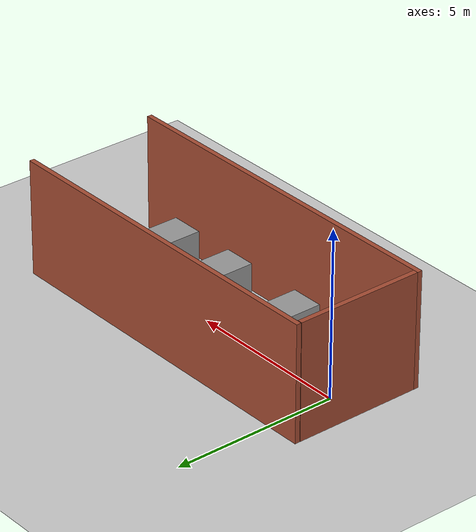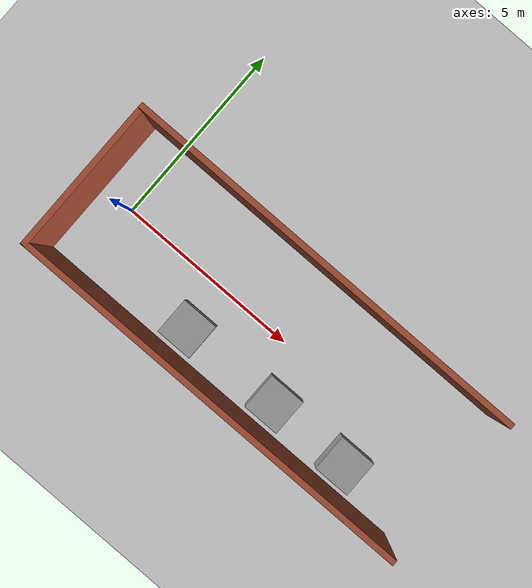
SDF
<sdf version="1.6">
 <world name="default">
  <light name="sun" type="directional">
   <pose>0 0 10 0 -0 0</pose>
   <diffuse>0.8 0.8 0.8 1</diffuse>
   <specular>0.2 0.2 0.2 1</specular>
   <attenuation>
    <range>1000</range>
    <constant>0.9</constant>
    <linear>0.01</linear>
    <quadratic>0.001</quadratic>
   </attenuation>
   <direction>-0.5 0.1 -0.9</direction>
  </light>
  <model name="ground_plane">
   <static>1</static>
   <link name="link">
    <collision name="collision">
     <geometry><plane><normal>0 0 1</normal><size>100 100</size></plane></geometry>
     <surface>
      <contact><collide_bitmask>65535</collide_bitmask></contact>
      <friction><ode><mu>100</mu><mu2>50</mu2></ode></friction>
     </surface>
    </collision>
    <visual name="visual">
     <cast_shadows>0</cast_shadows>
     <geometry><plane><normal>0 0 1</normal><size>100 100</size></plane></geometry>
     <material>
      <script><uri>file://media/materials/scripts/gazebo.material</uri><name>Gazebo/Grey</name></script>
     </material>
    </visual>
   </link>
  </model>
  <gravity>0 0 -9.8</gravity>
  <magnetic_field>6e-06 2.3e-05 -4.2e-05</magnetic_field>
  <atmosphere type="adiabatic"/>
  <physics name="default_physics" default="0" type="ode">
   <max_step_size>0.001</max_step_size>
   <real_time_factor>1</real_time_factor>
   <real_time_update_rate>1000</real_time_update_rate>
  </physics>
  <scene><ambient>0.4 0.4 0.4 1</ambient><background>0.7 0.7 0.7 1</background><shadows>1</shadows></scene>
  <spherical_coordinates>
   <surface_model>EARTH_WGS84</surface_model>
   <latitude_deg>0</latitude_deg>
   <longitude_deg>0</longitude_deg>
   <elevation>0</elevation>
   <heading_deg>0</heading_deg>
  </spherical_coordinates>
  <model name="lobbyFloor">
   <pose>4.463 -0.015365 0 0 -0 0</pose>
   <link name="Wall_20">
    <collision name="Wall_20_Collision">
     <geometry><box><size>4 0.15 3.5</size></box></geometry>
     <pose>0 0 1.75 0 -0 0</pose>
    </collision>
    <visual name="Wall_20_Visual">
     <pose>0 0 1.75 0 -0 0</pose>
     <geometry><box><size>4 0.15 3.5</size></box></geometry>
     <material>
      <script><uri>file://media/materials/scripts/gazebo.material</uri><name>Gazebo/Bricks</name></script>
      <ambient>1 1 1 1</ambient>
     </material>
     <meta><layer>0</layer></meta>
    </visual>
    <pose>-5.426 -0.075 0 0 -0 1.5708</pose>
   </link>
   <link name="Wall_3">
    <collision name="Wall_3_Collision">
     <geometry><box><size>11 0.15 3.5</size></box></geometry>
     <pose>0 0 1.75 0 -0 0</pose>
    </collision>
    <visual name="Wall_3_Visual">
     <pose>0 0 1.75 0 -0 0</pose>
     <geometry><box><size>11 0.15 3.5</size></box></geometry>
     <material>
      <script><uri>file://media/materials/scripts/gazebo.material</uri><name>Gazebo/Bricks</name></script>
      <ambient>1 1 1 1</ambient>
     </material>
     <meta><layer>0</layer></meta>
    </visual>
    <pose>-0.001 -2.01236 0 0 -0 0</pose>
   </link>
   <link name="Wall_8">
    <collision name="Wall_8_Collision">
     <geometry><box><size>11 0.15 3.5</size></box></geometry>
     <pose>0 0 1.75 0 -0 0</pose>
    </collision>
    <visual name="Wall_8_Visual">
     <pose>0 0 1.75 0 -0 0</pose>
     <geometry><box><size>11 0.15 3.5</size></box></geometry>
     <material>
      <script><uri>file://media/materials/scripts/gazebo.material</uri><name>Gazebo/Bricks</name></script>
      <ambient>1 1 1 1</ambient>
     </material>
     <meta><layer>0</layer></meta>
    </visual>
    <pose>0.001 2.01236 0 0 -0 0</pose>
   </link>
   <static>1</static>
  </model>
  <model name="unit_box">
   <pose>2.97411 -1.26843 0.499995 1e-05 -0 0</pose>
   <link name="link">
    <inertial>
     <mass>1</mass>
     <inertia>
      <ixx>0.166667</ixx>
      <ixy>0</ixy>
      <ixz>0</ixz>
      <iyy>0.166667</iyy>
      <iyz>0</iyz>
      <izz>0.166667</izz>
     </inertia>
    </inertial>
    <collision name="collision"><geometry><box><size>1 1 1</size></box></geometry></collision>
    <visual name="visual">
     <geometry><box><size>1 1 1</size></box></geometry>
     <material>
      <script><name>Gazebo/Grey</name><uri>file://media/materials/scripts/gazebo.material</uri></script>
     </material>
    </visual>
   </link>
  </model>
  <model name="unit_box_0">
   <pose>5.753 -1.27009 0.499995 -1e-05 -0 0</pose>
   <link name="link">
    <inertial>
     <mass>1</mass>
     <inertia>
      <ixx>0.166667</ixx>
      <ixy>0</ixy>
      <ixz>0</ixz>
      <iyy>0.166667</iyy>
      <iyz>0</iyz>
      <izz>0.166667</izz>
     </inertia>
    </inertial>
    <collision name="collision"><geometry><box><size>1 1 1</size></box></geometry></collision>
    <visual name="visual">
     <geometry><box><size>1 1 1</size></box></geometry>
     <material>
      <script><name>Gazebo/Grey</name><uri>file://media/materials/scripts/gazebo.material</uri></script>
     </material>
    </visual>
   </link>
  </model>
  <model name="unit_box_1">
   <pose>8.01562 -1.27896 0.5 0 -0 0</pose>
   <link name="link">
    <inertial>
     <mass>1</mass>
     <inertia>
      <ixx>0.166667</ixx>
      <ixy>0</ixy>
      <ixz>0</ixz>
      <iyy>0.166667</iyy>
      <iyz>0</iyz>
      <izz>0.166667</izz>
     </inertia>
    </inertial>
    <collision name="collision"><geometry><box><size>1 1 1</size></box></geometry></collision>
    <visual name="visual">
     <geometry><box><size>1 1 1</size></box></geometry>
     <material>
      <script><name>Gazebo/Grey</name><uri>file://media/materials/scripts/gazebo.material</uri></script>
     </material>
    </visual>
   </link>
  </model>
 </world>
</sdf>
